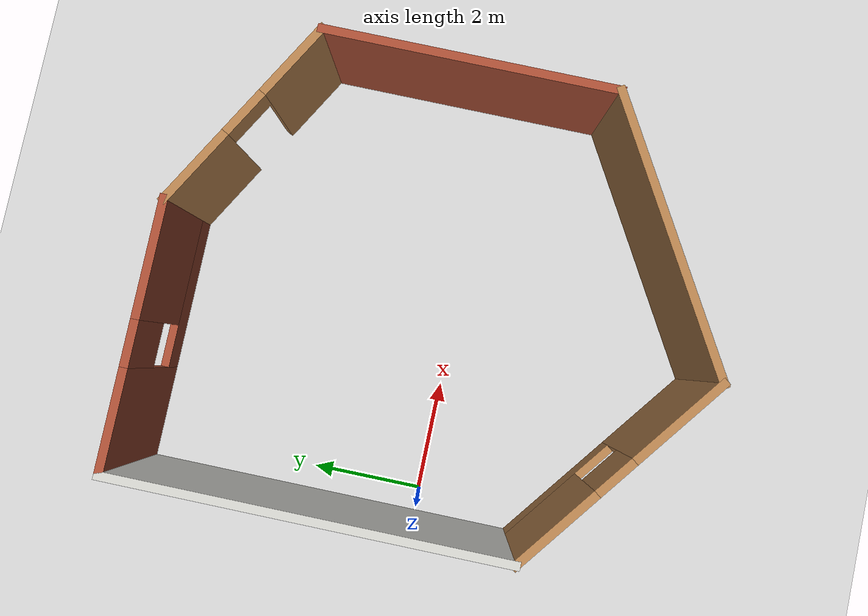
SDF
<sdf version="1.7">
 <world name="default">
  <light name="sun" type="directional">
   <pose>0 0 10 0 -0 0</pose>
   <diffuse>0.8 0.8 0.8 1</diffuse>
   <specular>0.2 0.2 0.2 1</specular>
   <attenuation>
    <range>1000</range>
    <constant>0.9</constant>
    <linear>0.01</linear>
    <quadratic>0.001</quadratic>
   </attenuation>
   <direction>-0.5 0.1 -0.9</direction>
   <spot><inner_angle>0</inner_angle><outer_angle>0</outer_angle><falloff>0</falloff></spot>
  </light>
  <model name="ground_plane">
   <static>1</static>
   <link name="link">
    <collision name="collision">
     <geometry><plane><normal>0 0 1</normal><size>100 100</size></plane></geometry>
     <surface>
      <contact><collide_bitmask>65535</collide_bitmask></contact>
      <friction><ode><mu>100</mu><mu2>50</mu2></ode></friction>
     </surface>
    </collision>
    <visual name="visual">
     <cast_shadows>0</cast_shadows>
     <geometry><plane><normal>0 0 1</normal><size>100 100</size></plane></geometry>
     <material>
      <script><uri>file://media/materials/scripts/gazebo.material</uri><name>Gazebo/Grey</name></script>
     </material>
    </visual>
   </link>
  </model>
  <gravity>0 0 -9.8</gravity>
  <magnetic_field>6e-06 2.3e-05 -4.2e-05</magnetic_field>
  <atmosphere type="adiabatic"/>
  <physics type="ode">
   <max_step_size>0.001</max_step_size>
   <real_time_factor>1</real_time_factor>
   <real_time_update_rate>1000</real_time_update_rate>
  </physics>
  <scene><ambient>0.4 0.4 0.4 1</ambient><background>0.7 0.7 0.7 1</background><shadows>1</shadows></scene>
  <spherical_coordinates>
   <surface_model>EARTH_WGS84</surface_model>
   <latitude_deg>0</latitude_deg>
   <longitude_deg>0</longitude_deg>
   <elevation>0</elevation>
   <heading_deg>0</heading_deg>
  </spherical_coordinates>
  <model name="my_building">
   <pose>3.47099 0.30592 0 0 -0 0</pose>
   <link name="Wall_0">
    <collision name="Wall_0_Collision">
     <geometry><box><size>7 0.15 2.5</size></box></geometry>
     <pose>0 0 1.25 0 -0 0</pose>
    </collision>
    <visual name="Wall_0_Visual">
     <pose>0 0 1.25 0 -0 0</pose>
     <geometry><box><size>7 0.15 2.5</size></box></geometry>
     <material>
      <script><uri>file://media/materials/scripts/gazebo.material</uri><name>Gazebo/CeilingTiled</name></script>
      <ambient>1 1 1 1</ambient>
     </material>
     <meta><layer>0</layer></meta>
    </visual>
    <pose>-3.96571 1.36389 0 0 -0 1.5708</pose>
   </link>
   <link name="Wall_1">
    <pose>-1.66571 4.78888 0 0 -0 0</pose>
    <visual name="Wall_1_Visual_0">
     <pose>-1.45266 0 1.25 0 -0 0</pose>
     <geometry><box><size>1.84468 0.15 2.5</size></box></geometry>
     <material>
      <script><uri>file://media/materials/scripts/gazebo.material</uri><name>Gazebo/Bricks</name></script>
      <ambient>1 1 1 1</ambient>
     </material>
     <meta><layer>0</layer></meta>
    </visual>
    <collision name="Wall_1_Collision_0">
     <geometry><box><size>1.84468 0.15 2.5</size></box></geometry>
     <pose>-1.45266 0 1.25 0 -0 0</pose>
    </collision>
    <visual name="Wall_1_Visual_1">
     <pose>0.922339 0 0.25 0 -0 0</pose>
     <geometry><box><size>2.90532 0.15 0.5</size></box></geometry>
     <material>
      <script><uri>file://media/materials/scripts/gazebo.material</uri><name>Gazebo/Bricks</name></script>
      <ambient>1 1 1 1</ambient>
     </material>
     <meta><layer>0</layer></meta>
    </visual>
    <collision name="Wall_1_Collision_1">
     <geometry><box><size>2.90532 0.15 0.5</size></box></geometry>
     <pose>0.922339 0 0.25 0 -0 0</pose>
    </collision>
    <visual name="Wall_1_Visual_2">
     <pose>1.32234 0 1.5 0 -0 0</pose>
     <geometry><box><size>2.10532 0.15 2</size></box></geometry>
     <material>
      <script><uri>file://media/materials/scripts/gazebo.material</uri><name>Gazebo/Bricks</name></script>
      <ambient>1 1 1 1</ambient>
     </material>
     <meta><layer>0</layer></meta>
    </visual>
    <collision name="Wall_1_Collision_2">
     <geometry><box><size>2.10532 0.15 2</size></box></geometry>
     <pose>1.32234 0 1.5 0 -0 0</pose>
    </collision>
    <visual name="Wall_1_Visual_3">
     <pose>-0.130321 0 1.9 0 -0 0</pose>
     <geometry><box><size>0.8 0.15 1.2</size></box></geometry>
     <material>
      <script><uri>file://media/materials/scripts/gazebo.material</uri><name>Gazebo/Bricks</name></script>
      <ambient>1 1 1 1</ambient>
     </material>
     <meta><layer>0</layer></meta>
    </visual>
    <collision name="Wall_1_Collision_3">
     <geometry><box><size>0.8 0.15 1.2</size></box></geometry>
     <pose>-0.130321 0 1.9 0 -0 0</pose>
    </collision>
   </link>
   <link name="Wall_2">
    <pose>2.30138 3.82639 0 0 -0 -0.523599</pose>
    <visual name="Wall_2_Visual_0">
     <pose>-1.21855 0 1.25 0 -0 0</pose>
     <geometry><box><size>1.56289 0.15 2.5</size></box></geometry>
     <material>
      <script><uri>file://media/materials/scripts/gazebo.material</uri><name>Gazebo/Wood</name></script>
      <ambient>1 1 1 1</ambient>
     </material>
     <meta><layer>0</layer></meta>
    </visual>
    <collision name="Wall_2_Collision_0">
     <geometry><box><size>1.56289 0.15 2.5</size></box></geometry>
     <pose>-1.21855 0 1.25 0 -0 0</pose>
    </collision>
    <visual name="Wall_2_Visual_1">
     <pose>1.23145 0 1.25 0 -0 0</pose>
     <geometry><box><size>1.5371 0.15 2.5</size></box></geometry>
     <material>
      <script><uri>file://media/materials/scripts/gazebo.material</uri><name>Gazebo/Wood</name></script>
      <ambient>1 1 1 1</ambient>
     </material>
     <meta><layer>0</layer></meta>
    </visual>
    <collision name="Wall_2_Collision_1">
     <geometry><box><size>1.5371 0.15 2.5</size></box></geometry>
     <pose>1.23145 0 1.25 0 -0 0</pose>
    </collision>
    <visual name="Wall_2_Visual_2">
     <pose>0.012895 0 2.25 0 -0 0</pose>
     <geometry><box><size>0.9 0.15 0.5</size></box></geometry>
     <material>
      <script><uri>file://media/materials/scripts/gazebo.material</uri><name>Gazebo/Wood</name></script>
      <ambient>1 1 1 1</ambient>
     </material>
     <meta><layer>0</layer></meta>
    </visual>
    <collision name="Wall_2_Collision_2">
     <geometry><box><size>0.9 0.15 0.5</size></box></geometry>
     <pose>0.012895 0 2.25 0 -0 0</pose>
    </collision>
   </link>
   <link name="Wall_3">
    <collision name="Wall_3_Collision">
     <geometry><box><size>5.25 0.15 2.5</size></box></geometry>
     <pose>0 0 1.25 0 -0 0</pose>
    </collision>
    <visual name="Wall_3_Visual">
     <pose>0 0 1.25 0 -0 0</pose>
     <geometry><box><size>5.25 0.15 2.5</size></box></geometry>
     <material>
      <script><uri>file://media/materials/scripts/gazebo.material</uri><name>Gazebo/Bricks</name></script>
      <ambient>1 1 1 1</ambient>
     </material>
     <meta><layer>0</layer></meta>
    </visual>
    <pose>3.96848 0.313885 0 0 -0 -1.5708</pose>
   </link>
   <link name="Wall_4">
    <collision name="Wall_4_Collision">
     <geometry><box><size>5.25 0.15 2.5</size></box></geometry>
     <pose>0 0 1.25 0 -0 0</pose>
    </collision>
    <visual name="Wall_4_Visual">
     <pose>0 0 1.25 0 -0 0</pose>
     <geometry><box><size>5.25 0.15 2.5</size></box></geometry>
     <material>
      <script><uri>file://media/materials/scripts/gazebo.material</uri><name>Gazebo/Wood</name></script>
      <ambient>1 1 1 1</ambient>
     </material>
     <meta><layer>0</layer></meta>
    </visual>
    <pose>1.76012 -3.51112 0 0 -0 -2.61799</pose>
   </link>
   <link name="Wall_6">
    <pose>-2.20698 -3.42361 0 0 -0 2.48247</pose>
    <visual name="Wall_6_Visual_0">
     <pose>-1.30295 0 1.25 0 -0 0</pose>
     <geometry><box><size>1.99363 0.15 2.5</size></box></geometry>
     <material>
      <script><uri>file://media/materials/scripts/gazebo.material</uri><name>Gazebo/Wood</name></script>
      <ambient>1 1 1 1</ambient>
     </material>
     <meta><layer>0</layer></meta>
    </visual>
    <collision name="Wall_6_Collision_0">
     <geometry><box><size>1.99363 0.15 2.5</size></box></geometry>
     <pose>-1.30295 0 1.25 0 -0 0</pose>
    </collision>
    <visual name="Wall_6_Visual_1">
     <pose>0.996813 0 0.25 0 -0 0</pose>
     <geometry><box><size>2.60589 0.15 0.5</size></box></geometry>
     <material>
      <script><uri>file://media/materials/scripts/gazebo.material</uri><name>Gazebo/Wood</name></script>
      <ambient>1 1 1 1</ambient>
     </material>
     <meta><layer>0</layer></meta>
    </visual>
    <collision name="Wall_6_Collision_1">
     <geometry><box><size>2.60589 0.15 0.5</size></box></geometry>
     <pose>0.996813 0 0.25 0 -0 0</pose>
    </collision>
    <visual name="Wall_6_Visual_2">
     <pose>1.39681 0 1.5 0 -0 0</pose>
     <geometry><box><size>1.80589 0.15 2</size></box></geometry>
     <material>
      <script><uri>file://media/materials/scripts/gazebo.material</uri><name>Gazebo/Wood</name></script>
      <ambient>1 1 1 1</ambient>
     </material>
     <meta><layer>0</layer></meta>
    </visual>
    <collision name="Wall_6_Collision_2">
     <geometry><box><size>1.80589 0.15 2</size></box></geometry>
     <pose>1.39681 0 1.5 0 -0 0</pose>
    </collision>
    <visual name="Wall_6_Visual_3">
     <pose>0.093868 0 1.9 0 -0 0</pose>
     <geometry><box><size>0.8 0.15 1.2</size></box></geometry>
     <material>
      <script><uri>file://media/materials/scripts/gazebo.material</uri><name>Gazebo/Wood</name></script>
      <ambient>1 1 1 1</ambient>
     </material>
     <meta><layer>0</layer></meta>
    </visual>
    <collision name="Wall_6_Collision_3">
     <geometry><box><size>0.8 0.15 1.2</size></box></geometry>
     <pose>0.093868 0 1.9 0 -0 0</pose>
    </collision>
   </link>
   <static>1</static>
  </model>
 </world>
</sdf>
